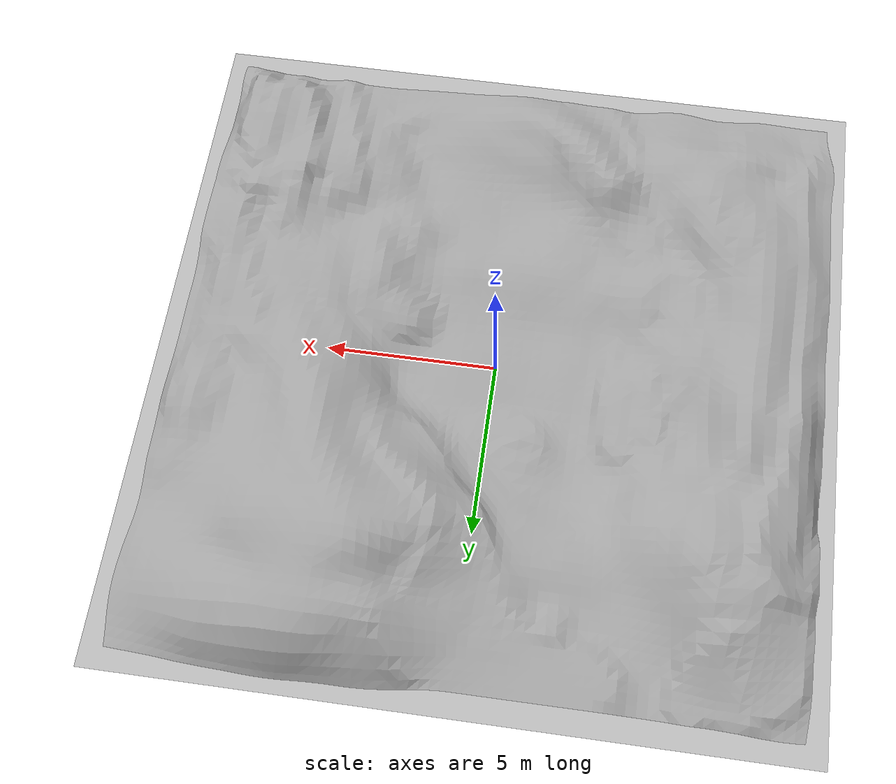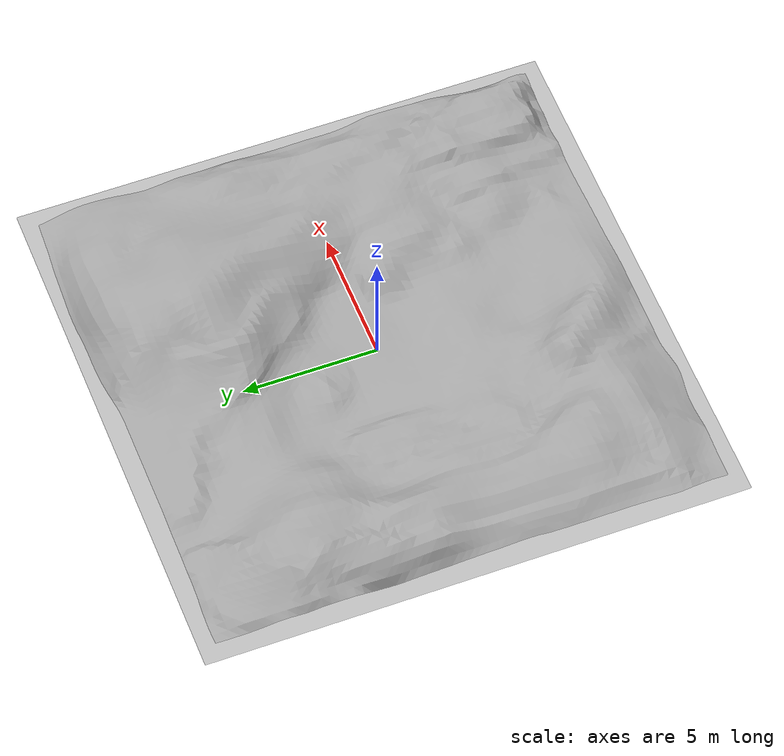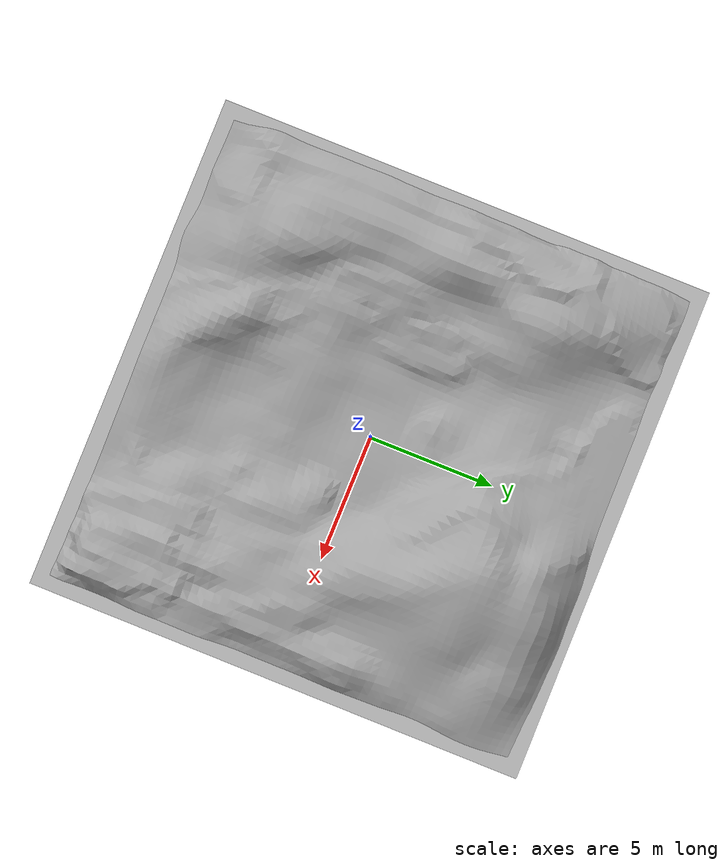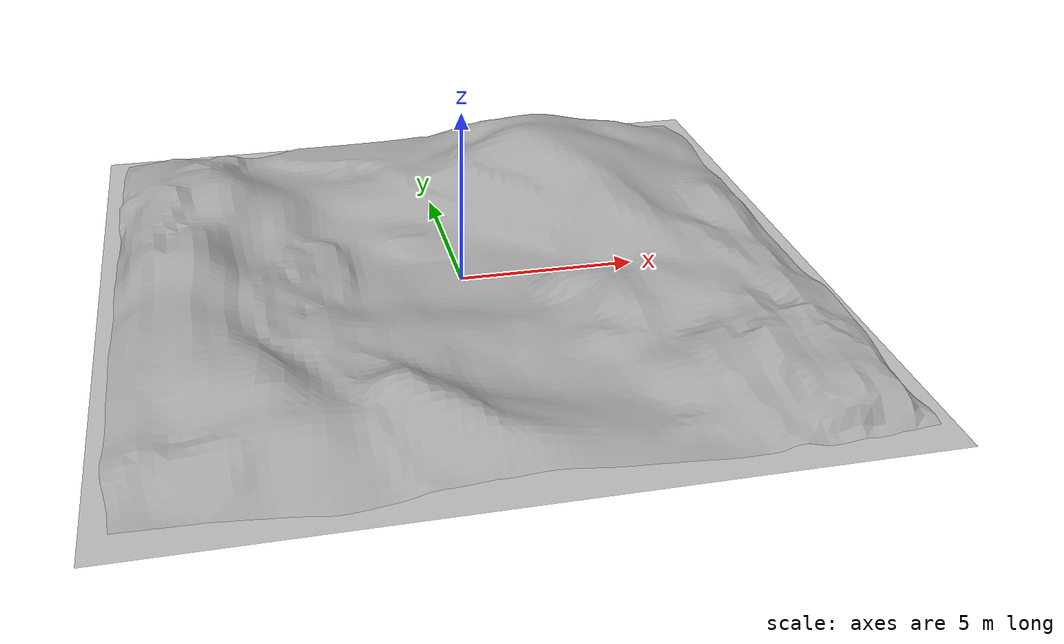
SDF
<?xml version="1.0" ?>
<sdf version="1.4">
  <world name="default">

  <!-- Global light source -->
    <include>
      <uri>model://sun</uri>
    </include>

    <include>
      <uri>model://dune1</uri>
    </include>

    <include>
      <uri>model://sand_plane</uri>
    </include>
  </world>
</sdf>

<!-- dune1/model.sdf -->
<sdf version="1.4">
  <model name="dune1">
    <static>true</static>
    <pose>0 0 0 0 0 0</pose>
    <link name="link">
      <collision name="collision">
        <geometry>
          <mesh>
            <uri>model://dune1/meshes/dune1.dae</uri>
            <scale>0.30 0.30 0.30</scale>
          </mesh>
        </geometry>
        <surface>
          <friction>
            <ode>
              <mu>2</mu>
              <mu2>0.01</mu2>
            </ode>
          </friction>
        </surface>
      </collision>
      <visual name="visual">
        <geometry>
          <mesh>
            <uri>model://dune1/meshes/dune1.dae</uri>
            <scale>0.30 0.30 0.30</scale>
          </mesh>
        </geometry>
        <material>
          <script>
          	<uri>model://materials/scripts</uri>
          	<uri>model://materials/textures</uri>
          	<name>sand/floor</name>
          </script>
        </material>
      </visual>
    </link>
  </model>
</sdf>

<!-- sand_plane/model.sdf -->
<sdf version="1.4">
  <model name="sand_plane">
    <static>true</static>
    <pose>0 0 0 0 0 0</pose>
    <link name="link">
      <collision name="collision">
        <geometry>
          <box>
            <size>20 20 0</size>
          </box>
        </geometry>
        <surface>
          <friction>
            <ode>
              <mu>0.001</mu>
              <mu2>0.01</mu2>
            </ode>
          </friction>
        </surface>
      </collision>
      <visual name="visual">
        <geometry>
          <box>
            <size>20 20 0</size>
          </box>
        </geometry>
        <material>
          <script>
            <uri>model://materials/scripts</uri>
          	<uri>model://materials/textures</uri>
          	<name>sand/floor</name>
          </script>
        </material>
      </visual>
    </link>
  </model>
</sdf>
